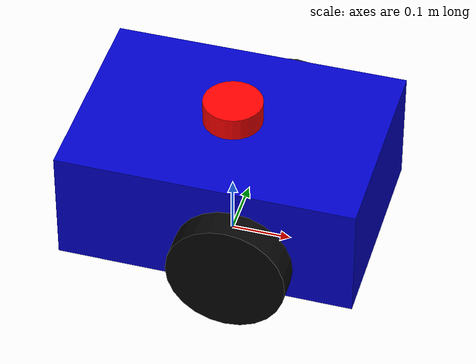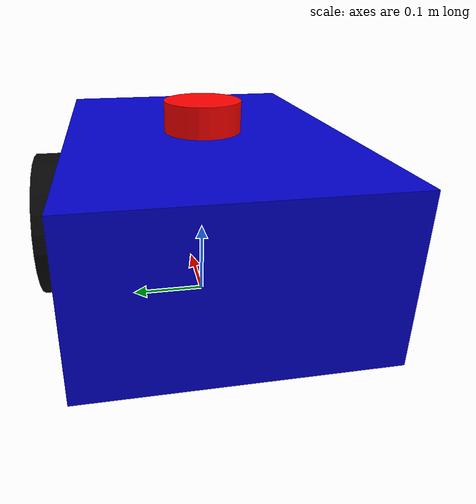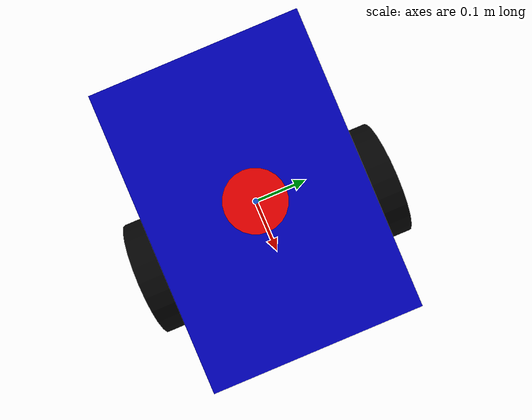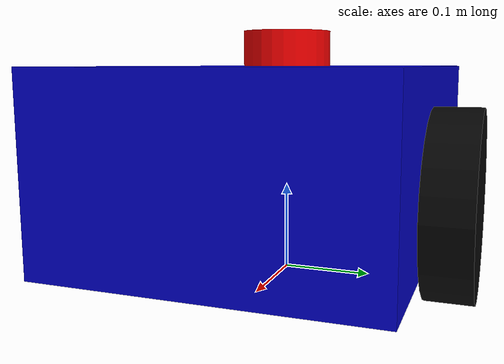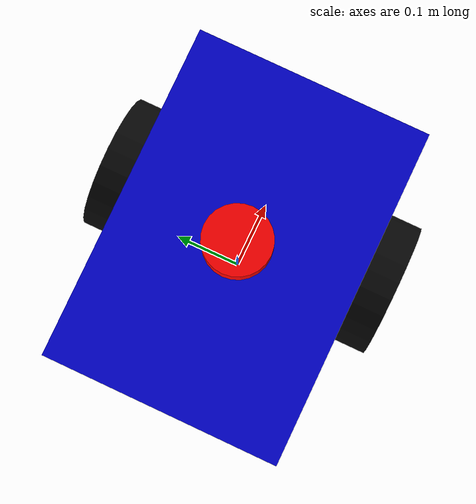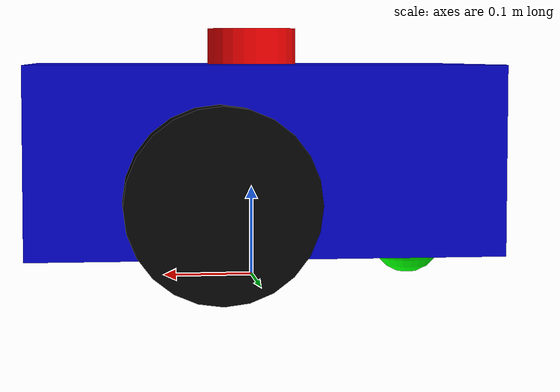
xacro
<?xml version="1.0"?>
<!-- 定义机器人模型文件 -->
<robot name="campusbot" xmlns:xacro="http://www.ros.org/wiki/xacro">
    <xacro:property name="base_length" value="0.50"/>
    <xacro:property name="base_width" value="0.35"/>
    <xacro:property name="base_height" value="0.20"/>
    <xacro:property name="base_mass" value="10"/>
    <xacro:property name="wheel_radius" value="0.10"/>
    <xacro:property name="wheel_width" value="0.05"/>
    <xacro:property name="ground_clearance" value="0.04"/>
    <xacro:property name="wheel_mass" value="1.0"/>
    <xacro:property name="caster_radius" value="0.04"/>
    <xacro:property name="caster_mass" value="0.20"/>
    <xacro:property name="caster_x" value="-0.18"/>
    <xacro:property name="wheel_x" value="0.05"/>
    <xacro:property name="lidar_radius" value="0.05"/>
    <xacro:property name="lidar_height" value="0.04"/>
    <xacro:property name="lidar_mass"  value="0.20"/>
    <xacro:property
      name="caster_inertia"
      value="${2.0 * caster_mass * caster_radius * caster_radius / 5.0}"/>

    <xacro:macro name="wheel" params="side y_offset">
        <link name="${side}_wheel_link">
            <visual>
                <geometry>
                    <cylinder radius="${wheel_radius}" length="${wheel_width}"/>
                </geometry>
                <material name="${side}_wheel_black">
                    <color rgba="0.02 0.02 0.02 1"/>
                 </material>

            <origin xyz="0 0 0" rpy="1.5708 0 0"/>
            </visual>
            <collision>
                <geometry>
                    <cylinder radius="${wheel_radius}" length="${wheel_width}"/>
                </geometry>

            <origin xyz="0 0 0" rpy="1.5708 0 0"/>
            </collision>
    <inertial>
        <origin rpy="0 0 0" xyz="0 0 0"/>
        <mass value="${wheel_mass}"/>
        <inertia iyy="${wheel_mass * (wheel_radius*wheel_radius) / 2.0}"
            ixx="${wheel_mass * (3*wheel_radius*wheel_radius+wheel_width*wheel_width) / 12.0}"
                 izz="${wheel_mass * (3*wheel_radius*wheel_radius+wheel_width*wheel_width) / 12.0}"
                 ixy="0" ixz="0" iyz="0"/>
    </inertial>
        </link>
        <joint name="${side}_wheel_joint" type="continuous">
            <parent link="base_link"/>
            <child link="${side}_wheel_link"/>
            <origin rpy="0 0 0" xyz="${wheel_x} ${y_offset} ${wheel_radius - (ground_clearance + base_height / 2.0)}"/>
            <axis xyz="0 1 0"/>
        </joint>
    </xacro:macro>
<!-- base_footprint相当于机器人的地面接触点，也就是Z=0 -->

<link name="base_footprint"/>
<!-- 固定机器人关节 -->

<!-- Joint Origin 决定 Link 坐标系放在哪里；Visual、Collision 和 Inertial Origin 决定各自的数据相对 Link 坐标系放在哪里。-->
<link name="base_link">
    <!--可视化属性 -->
    <visual>
        <geometry>
            <box size="${base_length} ${base_width} ${base_height}"/>
        </geometry>
        <origin rpy="0 0 0" xyz="0 0 0"/>
        <material name="blue">
            <color rgba="0 0 0.8 1"/>
        </material>
    </visual>
    <!--collision是描述物体发生碰撞的时候的形状 -->
    <collision>
        <geometry>
            <box size="${base_length} ${base_width} ${base_height}"/>
        </geometry>
        <origin rpy="0 0 0" xyz="0 0 0"/>
    </collision>
    <!--inertia是描述物体的转动惯量的，既为用多大力会导致物体发生旋转 -->
    <inertial>
        <origin rpy="0 0 0" xyz="0 0 0"/>
        <mass value="${base_mass}"/>
        <inertia ixx="${base_mass * (base_width*base_width+base_height*base_height) / 12.0}"
                 iyy="${base_mass * (base_length*base_length+base_height*base_height) / 12.0}"
                 izz="${base_mass * (base_width*base_width+base_length*base_length) / 12.0}"
                 ixy="0" ixz="0" iyz="0"/>
    </inertial>

</link>
<link name="lidar_link">
    <visual>
        <geometry>
            <cylinder radius="${lidar_radius}" length="${lidar_height}"/>
        </geometry>
        <material name="lidar_red">
            <color rgba="1 0 0 1"/>
        </material>
        <origin xyz="0 0 0" rpy="0 0 0"/>
    </visual>
    <collision>
        <geometry>
            <cylinder radius="${lidar_radius}" length="${lidar_height}"/>
        </geometry>
        <origin xyz="0 0 0" rpy="0 0 0"/>
    </collision>
    <inertial>
        <origin rpy="0 0 0" xyz="0 0 0"/>
        <mass value="${lidar_mass}"/>
            <inertia ixx="${lidar_mass * (3*lidar_radius*lidar_radius+lidar_height*lidar_height)/12}"
                iyy="${lidar_mass * (3*lidar_radius*lidar_radius+lidar_height*lidar_height)/12}"
                izz="${lidar_mass * lidar_radius * lidar_radius/2}"
                ixy="0" iyz="0" ixz="0"/>
        </inertial>
</link>

<link name="rear_caster_link">
    <visual>
        <geometry>
            <sphere radius="${caster_radius}"/>
        </geometry>
        <material name="wheel_green">
            <color rgba="0 1 0 1"/>
        </material>
        <origin xyz="0 0 0" rpy="0 0 0"/>
    </visual>
    <collision>
        <geometry>
            <sphere radius="${caster_radius}"/>
        </geometry>
        <origin xyz="0 0 0" rpy="0 0 0"/>
    </collision>
    <inertial>
        <origin xyz="0 0 0" rpy="0 0 0"/>
        <mass value="${caster_mass}"/>
        <inertia ixx="${caster_inertia}" iyy="${caster_inertia}" izz="${caster_inertia}" ixy="0" ixz="0" iyz="0"/>
    </inertial>
</link>
<joint name="base_joint" type="fixed">
    <parent link="base_footprint"/>
    <child link="base_link"/>
    <origin rpy="0 0 0" xyz="0 0 ${ground_clearance+base_height / 2.0}"/>
</joint>
<joint name="rear_caster_joint" type="fixed">
    <parent link="base_link"/>
    <child link="rear_caster_link"/>
    <origin xyz="${caster_x} 0 ${caster_radius-(ground_clearance+base_height/2)}" rpy="0 0 0"/>
</joint>
<xacro:wheel
      side="left"
      y_offset="${(base_width + wheel_width) / 2.0}"/>
<xacro:wheel
    side="right"
    y_offset="${-(base_width + wheel_width) / 2.0}"/>
<joint name="lidar_joint" type="fixed">
    <parent link="base_link"/>
    <child link="lidar_link"/>
    <origin xyz="0 0 ${base_height/2+lidar_height/2}" rpy="0 0 0"/>
</joint>

<!-- 传感器名称：lidar_sensor -->
<!--   类型：gpu_lidar -->
<!--   Gazebo Topic：/scan -->
<!--   更新频率：10 Hz -->
<!--   水平采样数：360 -->
<!--   角分辨率倍率：1 -->
<!--   最小角：-3.14159 rad -->
<!--   最大角： 3.14159 rad -->
<!--   最小距离：0.12 m -->
<!--   最大距离：12.0 m -->
<!--   距离分辨率：0.01 m -->
<!--   always_on：true -->
<!--   visualize：true -->
<gazebo reference="lidar_link">
    <sensor name="lidar_sensor" type="gpu_lidar">
     <topic>/scan</topic>
        <update_rate>10</update_rate>
        <always_on>true</always_on>
        <visualize>true</visualize>
         <lidar>
             <scan>
                 <horizontal>
                <samples>360</samples>
                <resolution>1</resolution>
                <min_angle>-3.14159</min_angle>
                <max_angle>3.14159</max_angle>
                </horizontal>
            </scan>
            <range>
                <min>0.12</min>
                <max>12</max>
                <resolution>0.01</resolution>
                </range>
        </lidar>
    </sensor>
</gazebo>

<gazebo>
    <!-- 里程计插件 -->
    <plugin
        filename="ignition-gazebo-diff-drive-system"
        name="gz::sim::systems::DiffDrive">
     <left_joint>left_wheel_joint</left_joint>
     <right_joint>right_wheel_joint</right_joint>
     <!-- 左右轮中心距离，也就是L,目前是0.40 -->
     <wheel_separation>${base_width+wheel_width}</wheel_separation>
     <wheel_radius>${wheel_radius}</wheel_radius>
     <topic>/cmd_vel</topic>
     <!-- 里程计输出频率，设置为30 -->
     <odom_publish_frequency>30</odom_publish_frequency>
     <frame_id>odom</frame_id>
     <child_frame_id>base_footprint</child_frame_id>

    <max_linear_acceleration>0.5</max_linear_acceleration>
    <min_linear_acceleration>-0.5</min_linear_acceleration>

    <max_angular_acceleration>1.0</max_angular_acceleration>
    <min_angular_acceleration>-1.0</min_angular_acceleration>

    </plugin>
    <!-- 关节状态插件，后续也要通过brdge乔接给ros2 -->
    <plugin
        filename="ignition-gazebo-joint-state-publisher-system"
        name="gz::sim::systems::JointStatePublisher">
    <joint_name>left_wheel_joint</joint_name>
    <joint_name>right_wheel_joint</joint_name>
    <topic>/joint_states</topic>
    </plugin>
</gazebo>

</robot>
